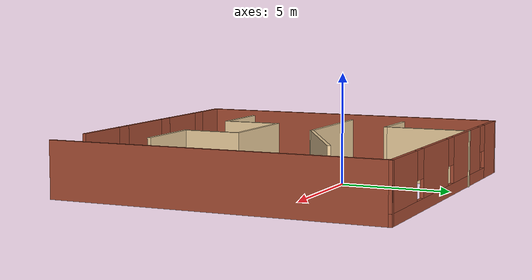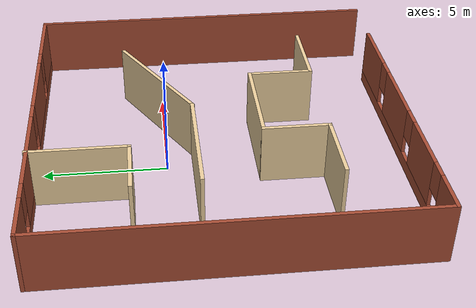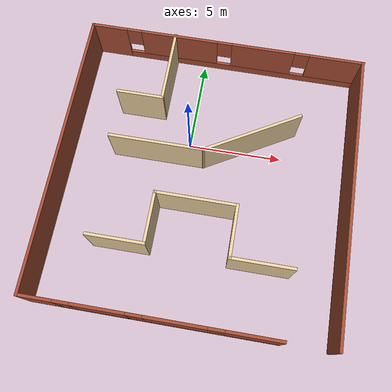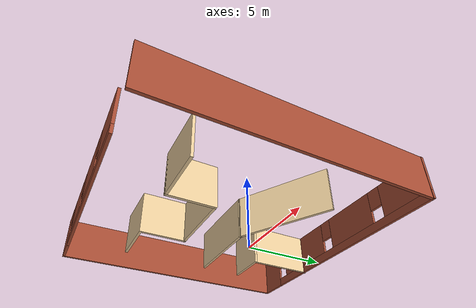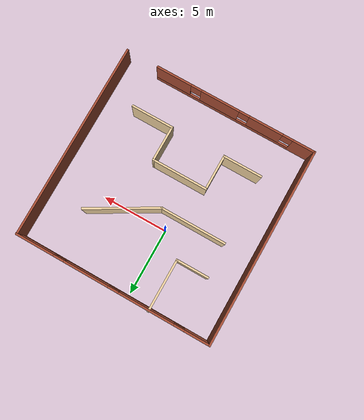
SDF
<?xml version='1.0'?>
<sdf version='1.7'>
  <model name='gMaze4'>
    <pose>1.11307 -2.14655 0 0 -0 0</pose>
    <link name='Wall_0'>
      <pose>0 7.40084 0 0 -0 0</pose>
      <visual name='Wall_0_Visual_0'>
        <pose>-6.50945 0 1.25 0 -0 0</pose>
        <geometry>
          <box>
            <size>1.98109 0.15 2.5</size>
          </box>
        </geometry>
        <material>
          <script>
            <uri>file://media/materials/scripts/gazebo.material</uri>
            <name>Gazebo/Bricks</name>
          </script>
          <ambient>1 1 1 1</ambient>
        </material>
        <meta>
          <layer>0</layer>
        </meta>
      </visual>
      <collision name='Wall_0_Collision_0'>
        <geometry>
          <box>
            <size>1.98109 0.15 2.5</size>
          </box>
        </geometry>
        <pose>-6.50945 0 1.25 0 -0 0</pose>
      </collision>
      <visual name='Wall_0_Visual_1'>
        <pose>0.990545 0 0.25 0 -0 0</pose>
        <geometry>
          <box>
            <size>13.0189 0.15 0.5</size>
          </box>
        </geometry>
        <material>
          <script>
            <uri>file://media/materials/scripts/gazebo.material</uri>
            <name>Gazebo/Bricks</name>
          </script>
          <ambient>1 1 1 1</ambient>
        </material>
        <meta>
          <layer>0</layer>
        </meta>
      </visual>
      <collision name='Wall_0_Collision_1'>
        <geometry>
          <box>
            <size>13.0189 0.15 0.5</size>
          </box>
        </geometry>
        <pose>0.990545 0 0.25 0 -0 0</pose>
      </collision>
      <visual name='Wall_0_Visual_2'>
        <pose>-2.60363 0 1.5 0 -0 0</pose>
        <geometry>
          <box>
            <size>4.23056 0.15 2</size>
          </box>
        </geometry>
        <material>
          <script>
            <uri>file://media/materials/scripts/gazebo.material</uri>
            <name>Gazebo/Bricks</name>
          </script>
          <ambient>1 1 1 1</ambient>
        </material>
        <meta>
          <layer>0</layer>
        </meta>
      </visual>
      <collision name='Wall_0_Collision_2'>
        <geometry>
          <box>
            <size>4.23056 0.15 2</size>
          </box>
        </geometry>
        <pose>-2.60363 0 1.5 0 -0 0</pose>
      </collision>
      <visual name='Wall_0_Visual_3'>
        <pose>2.02238 0 1.5 0 -0 0</pose>
        <geometry>
          <box>
            <size>3.42145 0.15 2</size>
          </box>
        </geometry>
        <material>
          <script>
            <uri>file://media/materials/scripts/gazebo.material</uri>
            <name>Gazebo/Bricks</name>
          </script>
          <ambient>1 1 1 1</ambient>
        </material>
        <meta>
          <layer>0</layer>
        </meta>
      </visual>
      <collision name='Wall_0_Collision_3'>
        <geometry>
          <box>
            <size>3.42145 0.15 2</size>
          </box>
        </geometry>
        <pose>2.02238 0 1.5 0 -0 0</pose>
      </collision>
      <visual name='Wall_0_Visual_4'>
        <pose>6.01655 0 1.5 0 -0 0</pose>
        <geometry>
          <box>
            <size>2.9669 0.15 2</size>
          </box>
        </geometry>
        <material>
          <script>
            <uri>file://media/materials/scripts/gazebo.material</uri>
            <name>Gazebo/Bricks</name>
          </script>
          <ambient>1 1 1 1</ambient>
        </material>
        <meta>
          <layer>0</layer>
        </meta>
      </visual>
      <collision name='Wall_0_Collision_4'>
        <geometry>
          <box>
            <size>2.9669 0.15 2</size>
          </box>
        </geometry>
        <pose>6.01655 0 1.5 0 -0 0</pose>
      </collision>
      <visual name='Wall_0_Visual_5'>
        <pose>-5.11891 0 1.9 0 -0 0</pose>
        <geometry>
          <box>
            <size>0.8 0.15 1.2</size>
          </box>
        </geometry>
        <material>
          <script>
            <uri>file://media/materials/scripts/gazebo.material</uri>
            <name>Gazebo/Bricks</name>
          </script>
          <ambient>1 1 1 1</ambient>
        </material>
        <meta>
          <layer>0</layer>
        </meta>
      </visual>
      <collision name='Wall_0_Collision_5'>
        <geometry>
          <box>
            <size>0.8 0.15 1.2</size>
          </box>
        </geometry>
        <pose>-5.11891 0 1.9 0 -0 0</pose>
      </collision>
      <visual name='Wall_0_Visual_6'>
        <pose>-0.088347 0 1.9 0 -0 0</pose>
        <geometry>
          <box>
            <size>0.8 0.15 1.2</size>
          </box>
        </geometry>
        <material>
          <script>
            <uri>file://media/materials/scripts/gazebo.material</uri>
            <name>Gazebo/Bricks</name>
          </script>
          <ambient>1 1 1 1</ambient>
        </material>
        <meta>
          <layer>0</layer>
        </meta>
      </visual>
      <collision name='Wall_0_Collision_6'>
        <geometry>
          <box>
            <size>0.8 0.15 1.2</size>
          </box>
        </geometry>
        <pose>-0.088347 0 1.9 0 -0 0</pose>
      </collision>
      <visual name='Wall_0_Visual_7'>
        <pose>4.1331 0 1.9 0 -0 0</pose>
        <geometry>
          <box>
            <size>0.8 0.15 1.2</size>
          </box>
        </geometry>
        <material>
          <script>
            <uri>file://media/materials/scripts/gazebo.material</uri>
            <name>Gazebo/Bricks</name>
          </script>
          <ambient>1 1 1 1</ambient>
        </material>
        <meta>
          <layer>0</layer>
        </meta>
      </visual>
      <collision name='Wall_0_Collision_7'>
        <geometry>
          <box>
            <size>0.8 0.15 1.2</size>
          </box>
        </geometry>
        <pose>4.1331 0 1.9 0 -0 0</pose>
      </collision>
    </link>
    <link name='Wall_1'>
      <collision name='Wall_1_Collision'>
        <geometry>
          <box>
            <size>15 0.15 2.5</size>
          </box>
        </geometry>
        <pose>0 0 1.25 0 -0 0</pose>
      </collision>
      <visual name='Wall_1_Visual'>
        <pose>0 0 1.25 0 -0 0</pose>
        <geometry>
          <box>
            <size>15 0.15 2.5</size>
          </box>
        </geometry>
        <material>
          <script>
            <uri>file://media/materials/scripts/gazebo.material</uri>
            <name>Gazebo/Bricks</name>
          </script>
          <ambient>1 1 1 1</ambient>
        </material>
        <meta>
          <layer>0</layer>
        </meta>
      </visual>
      <pose>7.40489 -0.024156 0 0 -0 -1.5708</pose>
    </link>
    <link name='Wall_23'>
      <collision name='Wall_23_Collision'>
        <geometry>
          <box>
            <size>4 0.15 2.5</size>
          </box>
        </geometry>
        <pose>0 0 1.25 0 -0 0</pose>
      </collision>
      <visual name='Wall_23_Visual'>
        <pose>0 0 1.25 0 -0 0</pose>
        <geometry>
          <box>
            <size>4 0.15 2.5</size>
          </box>
        </geometry>
        <material>
          <script>
            <uri>file://media/materials/scripts/gazebo.material</uri>
            <name>Gazebo/Grey</name>
          </script>
          <ambient>0.921569 0.807843 0.615686 1</ambient>
        </material>
        <meta>
          <layer>0</layer>
        </meta>
      </visual>
      <pose>-2.82414 5.52416 0 0 -0 -1.5708</pose>
    </link>
    <link name='Wall_24'>
      <collision name='Wall_24_Collision'>
        <geometry>
          <box>
            <size>2.5 0.15 2.5</size>
          </box>
        </geometry>
        <pose>0 0 1.25 0 -0 0</pose>
      </collision>
      <visual name='Wall_24_Visual'>
        <pose>0 0 1.25 0 -0 0</pose>
        <geometry>
          <box>
            <size>2.5 0.15 2.5</size>
          </box>
        </geometry>
        <material>
          <script>
            <uri>file://media/materials/scripts/gazebo.material</uri>
            <name>Gazebo/Grey</name>
          </script>
          <ambient>0.921569 0.807843 0.615686 1</ambient>
        </material>
        <meta>
          <layer>0</layer>
        </meta>
      </visual>
      <pose>-3.99914 3.59916 0 0 -0 3.14159</pose>
    </link>
    <link name='Wall_26'>
      <collision name='Wall_26_Collision'>
        <geometry>
          <box>
            <size>3 0.15 2.5</size>
          </box>
        </geometry>
        <pose>0 0 1.25 0 -0 0</pose>
      </collision>
      <visual name='Wall_26_Visual'>
        <pose>0 0 1.25 0 -0 0</pose>
        <geometry>
          <box>
            <size>3 0.15 2.5</size>
          </box>
        </geometry>
        <material>
          <script>
            <uri>file://media/materials/scripts/gazebo.material</uri>
            <name>Gazebo/Grey</name>
          </script>
          <ambient>0.921569 0.807843 0.615686 1</ambient>
        </material>
        <meta>
          <layer>0</layer>
        </meta>
      </visual>
      <pose>-3.58837 -4.15073 0 0 -0 0</pose>
    </link>
    <link name='Wall_27'>
      <collision name='Wall_27_Collision'>
        <geometry>
          <box>
            <size>2.75 0.15 2.5</size>
          </box>
        </geometry>
        <pose>0 0 1.25 0 -0 0</pose>
      </collision>
      <visual name='Wall_27_Visual'>
        <pose>0 0 1.25 0 -0 0</pose>
        <geometry>
          <box>
            <size>2.75 0.15 2.5</size>
          </box>
        </geometry>
        <material>
          <script>
            <uri>file://media/materials/scripts/gazebo.material</uri>
            <name>Gazebo/Grey</name>
          </script>
          <ambient>0.921569 0.807843 0.615686 1</ambient>
        </material>
        <meta>
          <layer>0</layer>
        </meta>
      </visual>
      <pose>-2.16337 -2.85073 0 0 -0 1.5708</pose>
    </link>
    <link name='Wall_28'>
      <collision name='Wall_28_Collision'>
        <geometry>
          <box>
            <size>4.25 0.15 2.5</size>
          </box>
        </geometry>
        <pose>0 0 1.25 0 -0 0</pose>
      </collision>
      <visual name='Wall_28_Visual'>
        <pose>0 0 1.25 0 -0 0</pose>
        <geometry>
          <box>
            <size>4.25 0.15 2.5</size>
          </box>
        </geometry>
        <material>
          <script>
            <uri>file://media/materials/scripts/gazebo.material</uri>
            <name>Gazebo/Grey</name>
          </script>
          <ambient>0.921569 0.807843 0.615686 1</ambient>
        </material>
        <meta>
          <layer>0</layer>
        </meta>
      </visual>
      <pose>-0.113373 -1.55073 0 0 -0 0</pose>
    </link>
    <link name='Wall_29'>
      <collision name='Wall_29_Collision'>
        <geometry>
          <box>
            <size>2.75 0.15 2.5</size>
          </box>
        </geometry>
        <pose>0 0 1.25 0 -0 0</pose>
      </collision>
      <visual name='Wall_29_Visual'>
        <pose>0 0 1.25 0 -0 0</pose>
        <geometry>
          <box>
            <size>2.75 0.15 2.5</size>
          </box>
        </geometry>
        <material>
          <script>
            <uri>file://media/materials/scripts/gazebo.material</uri>
            <name>Gazebo/Grey</name>
          </script>
          <ambient>0.921569 0.807843 0.615686 1</ambient>
        </material>
        <meta>
          <layer>0</layer>
        </meta>
      </visual>
      <pose>1.93663 -2.85073 0 0 -0 -1.5708</pose>
    </link>
    <link name='Wall_3'>
      <collision name='Wall_3_Collision'>
        <geometry>
          <box>
            <size>15 0.15 2.5</size>
          </box>
        </geometry>
        <pose>0 0 1.25 0 -0 0</pose>
      </collision>
      <visual name='Wall_3_Visual'>
        <pose>0 0 1.25 0 -0 0</pose>
        <geometry>
          <box>
            <size>15 0.15 2.5</size>
          </box>
        </geometry>
        <material>
          <script>
            <uri>file://media/materials/scripts/gazebo.material</uri>
            <name>Gazebo/Bricks</name>
          </script>
          <ambient>1 1 1 1</ambient>
        </material>
        <meta>
          <layer>0</layer>
        </meta>
      </visual>
      <pose>-7.425 -0.024156 0 0 -0 -1.5708</pose>
    </link>
    <link name='Wall_30'>
      <collision name='Wall_30_Collision'>
        <geometry>
          <box>
            <size>3.25 0.15 2.5</size>
          </box>
        </geometry>
        <pose>0 0 1.25 0 -0 0</pose>
      </collision>
      <visual name='Wall_30_Visual'>
        <pose>0 0 1.25 0 -0 0</pose>
        <geometry>
          <box>
            <size>3.25 0.15 2.5</size>
          </box>
        </geometry>
        <material>
          <script>
            <uri>file://media/materials/scripts/gazebo.material</uri>
            <name>Gazebo/Grey</name>
          </script>
          <ambient>0.921569 0.807843 0.615686 1</ambient>
        </material>
        <meta>
          <layer>0</layer>
        </meta>
      </visual>
      <pose>3.48663 -4.15073 0 0 -0 0</pose>
    </link>
    <link name='Wall_32'>
      <collision name='Wall_32_Collision'>
        <geometry>
          <box>
            <size>5 0.15 2.5</size>
          </box>
        </geometry>
        <pose>0 0 1.25 0 -0 0</pose>
      </collision>
      <visual name='Wall_32_Visual'>
        <pose>0 0 1.25 0 -0 0</pose>
        <geometry>
          <box>
            <size>5 0.15 2.5</size>
          </box>
        </geometry>
        <material>
          <script>
            <uri>file://media/materials/scripts/gazebo.material</uri>
            <name>Gazebo/Grey</name>
          </script>
          <ambient>0.921569 0.807843 0.615686 1</ambient>
        </material>
        <meta>
          <layer>0</layer>
        </meta>
      </visual>
      <pose>-2.62355 1.05572 0 0 -0 0</pose>
    </link>
    <link name='Wall_33'>
      <collision name='Wall_33_Collision'>
        <geometry>
          <box>
            <size>5.5 0.15 2.5</size>
          </box>
        </geometry>
        <pose>0 0 1.25 0 -0 0</pose>
      </collision>
      <visual name='Wall_33_Visual'>
        <pose>0 0 1.25 0 -0 0</pose>
        <geometry>
          <box>
            <size>5.5 0.15 2.5</size>
          </box>
        </geometry>
        <material>
          <script>
            <uri>file://media/materials/scripts/gazebo.material</uri>
            <name>Gazebo/Grey</name>
          </script>
          <ambient>0.921569 0.807843 0.615686 1</ambient>
        </material>
        <meta>
          <layer>0</layer>
        </meta>
      </visual>
      <pose>2.11807 2.39322 0 0 -0 0.523599</pose>
    </link>
    <link name='Wall_4'>
      <pose>-1.25 -7.44916 0 0 -0 0</pose>
      <visual name='Wall_4_Visual_0'>
        <pose>-5.37558 0 1.25 0 -0 0</pose>
        <geometry>
          <box>
            <size>1.74884 0.15 2.5</size>
          </box>
        </geometry>
        <material>
          <script>
            <uri>file://media/materials/scripts/gazebo.material</uri>
            <name>Gazebo/Bricks</name>
          </script>
          <ambient>1 1 1 1</ambient>
        </material>
        <meta>
          <layer>0</layer>
        </meta>
      </visual>
      <collision name='Wall_4_Collision_0'>
        <geometry>
          <box>
            <size>1.74884 0.15 2.5</size>
          </box>
        </geometry>
        <pose>-5.37558 0 1.25 0 -0 0</pose>
      </collision>
      <visual name='Wall_4_Visual_1'>
        <pose>0.87442 0 0.25 0 -0 0</pose>
        <geometry>
          <box>
            <size>10.7512 0.15 0.5</size>
          </box>
        </geometry>
        <material>
          <script>
            <uri>file://media/materials/scripts/gazebo.material</uri>
            <name>Gazebo/Bricks</name>
          </script>
          <ambient>1 1 1 1</ambient>
        </material>
        <meta>
          <layer>0</layer>
        </meta>
      </visual>
      <collision name='Wall_4_Collision_1'>
        <geometry>
          <box>
            <size>10.7512 0.15 0.5</size>
          </box>
        </geometry>
        <pose>0.87442 0 0.25 0 -0 0</pose>
      </collision>
      <visual name='Wall_4_Visual_2'>
        <pose>-2.40199 0 1.5 0 -0 0</pose>
        <geometry>
          <box>
            <size>2.59834 0.15 2</size>
          </box>
        </geometry>
        <material>
          <script>
            <uri>file://media/materials/scripts/gazebo.material</uri>
            <name>Gazebo/Bricks</name>
          </script>
          <ambient>1 1 1 1</ambient>
        </material>
        <meta>
          <layer>0</layer>
        </meta>
      </visual>
      <collision name='Wall_4_Collision_2'>
        <geometry>
          <box>
            <size>2.59834 0.15 2</size>
          </box>
        </geometry>
        <pose>-2.40199 0 1.5 0 -0 0</pose>
      </collision>
      <visual name='Wall_4_Visual_3'>
        <pose>1.19683 0 1.5 0 -0 0</pose>
        <geometry>
          <box>
            <size>2.99931 0.15 2</size>
          </box>
        </geometry>
        <material>
          <script>
            <uri>file://media/materials/scripts/gazebo.material</uri>
            <name>Gazebo/Bricks</name>
          </script>
          <ambient>1 1 1 1</ambient>
        </material>
        <meta>
          <layer>0</layer>
        </meta>
      </visual>
      <collision name='Wall_4_Collision_3'>
        <geometry>
          <box>
            <size>2.99931 0.15 2</size>
          </box>
        </geometry>
        <pose>1.19683 0 1.5 0 -0 0</pose>
      </collision>
      <visual name='Wall_4_Visual_4'>
        <pose>4.87324 0 1.5 0 -0 0</pose>
        <geometry>
          <box>
            <size>2.75352 0.15 2</size>
          </box>
        </geometry>
        <material>
          <script>
            <uri>file://media/materials/scripts/gazebo.material</uri>
            <name>Gazebo/Bricks</name>
          </script>
          <ambient>1 1 1 1</ambient>
        </material>
        <meta>
          <layer>0</layer>
        </meta>
      </visual>
      <collision name='Wall_4_Collision_4'>
        <geometry>
          <box>
            <size>2.75352 0.15 2</size>
          </box>
        </geometry>
        <pose>4.87324 0 1.5 0 -0 0</pose>
      </collision>
      <visual name='Wall_4_Visual_5'>
        <pose>-4.10116 0 1.9 0 -0 0</pose>
        <geometry>
          <box>
            <size>0.8 0.15 1.2</size>
          </box>
        </geometry>
        <material>
          <script>
            <uri>file://media/materials/scripts/gazebo.material</uri>
            <name>Gazebo/Bricks</name>
          </script>
          <ambient>1 1 1 1</ambient>
        </material>
        <meta>
          <layer>0</layer>
        </meta>
      </visual>
      <collision name='Wall_4_Collision_5'>
        <geometry>
          <box>
            <size>0.8 0.15 1.2</size>
          </box>
        </geometry>
        <pose>-4.10116 0 1.9 0 -0 0</pose>
      </collision>
      <visual name='Wall_4_Visual_6'>
        <pose>-0.702821 0 1.9 0 -0 0</pose>
        <geometry>
          <box>
            <size>0.8 0.15 1.2</size>
          </box>
        </geometry>
        <material>
          <script>
            <uri>file://media/materials/scripts/gazebo.material</uri>
            <name>Gazebo/Bricks</name>
          </script>
          <ambient>1 1 1 1</ambient>
        </material>
        <meta>
          <layer>0</layer>
        </meta>
      </visual>
      <collision name='Wall_4_Collision_6'>
        <geometry>
          <box>
            <size>0.8 0.15 1.2</size>
          </box>
        </geometry>
        <pose>-0.702821 0 1.9 0 -0 0</pose>
      </collision>
      <visual name='Wall_4_Visual_7'>
        <pose>3.09648 0 1.9 0 -0 0</pose>
        <geometry>
          <box>
            <size>0.8 0.15 1.2</size>
          </box>
        </geometry>
        <material>
          <script>
            <uri>file://media/materials/scripts/gazebo.material</uri>
            <name>Gazebo/Bricks</name>
          </script>
          <ambient>1 1 1 1</ambient>
        </material>
        <meta>
          <layer>0</layer>
        </meta>
      </visual>
      <collision name='Wall_4_Collision_7'>
        <geometry>
          <box>
            <size>0.8 0.15 1.2</size>
          </box>
        </geometry>
        <pose>3.09648 0 1.9 0 -0 0</pose>
      </collision>
    </link>
    <static>1</static>
  </model>
</sdf>
